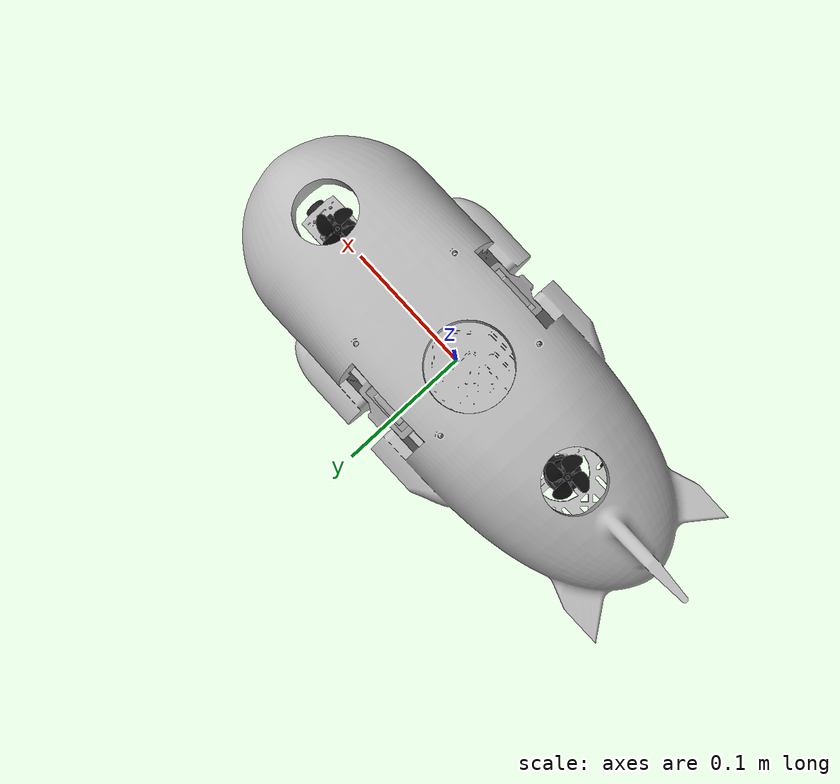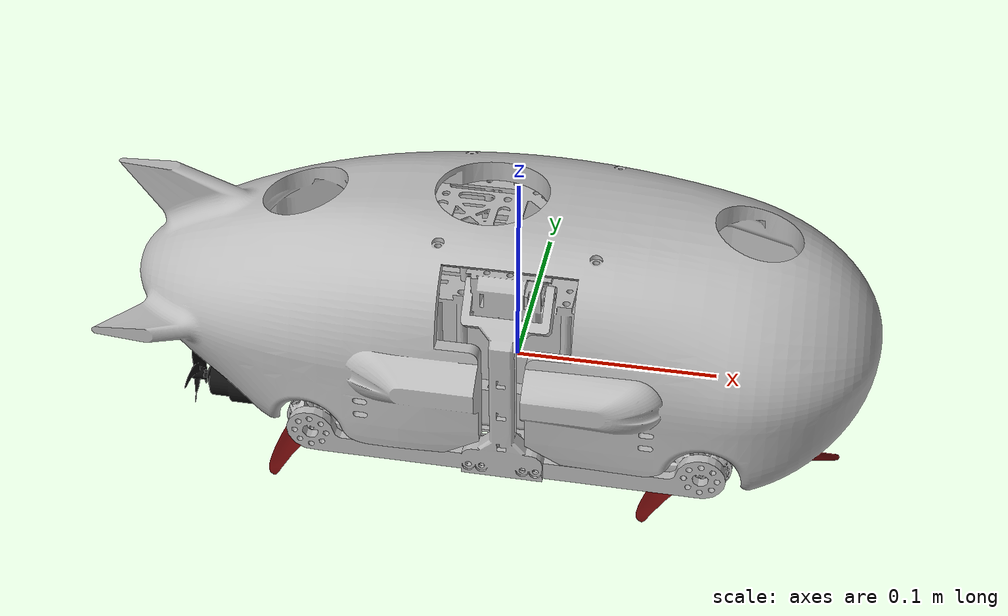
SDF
<?xml version="1.0" ?>
<sdf version="1.10">
  <model name="teleh4z_zaxis" canonical_link="base_link">
    <static>false</static>
    <self_collide>false</self_collide>
    <allow_auto_disable>false</allow_auto_disable>

    <link name="z_axis_carriage_link">
      <gravity>false</gravity>
      <pose>0 0 0 0 0 0</pose>
      <inertial>
        <mass>0.0001</mass>
        <inertia>
          <ixx>1e-8</ixx>
          <ixy>0</ixy>
          <ixz>0</ixz>
          <iyy>1e-8</iyy>
          <iyz>0</iyz>
          <izz>1e-8</izz>
        </inertia>
      </inertial>
    </link>

    <joint name="z_axis_slider_joint" type="prismatic">
      <parent>world</parent>
      <child>z_axis_carriage_link</child>
      <axis>
        <xyz>0 0 1</xyz>
        <limit>
          <lower>-5.0</lower>
          <upper>3.0</upper>
          <effort>1000000</effort>
          <velocity>1000</velocity>
        </limit>
        <dynamics>
          <damping>0.0</damping>
          <friction>0.0</friction>
        </dynamics>
      </axis>
    </joint>

    <joint name="z_axis_attitude_joint" type="ball">
      <parent>z_axis_carriage_link</parent>
      <child>base_link</child>
    </joint>

    <link name="base_link">
      <gravity>1</gravity>
      <velocity_decay>
        <linear>0.01</linear>
        <angular>0.01</angular>
      </velocity_decay>
      <pose>0 0 0 0 0 0</pose>

      <inertial>
        <!-- Mass-matched to the deployed Stonefish Teleh4z model. -->
        <mass>1.41407247401</mass>
        <pose>0 0 -0.0108 0 0 0</pose>
        <inertia>
          <ixx>0.003964</ixx>
          <ixy>-0.000003</ixy>
          <ixz>0.000266</ixz>
          <iyy>0.011147</iyy>
          <iyz>-0.000005</iyz>
          <izz>0.011083</izz>
        </inertia>
      </inertial>

      <visual name="body_main_visual">
        <pose>0 0 0 0 0 0</pose>
        <geometry>
          <mesh>
            <uri>model://teleh4z/meshes/body_main_colored.dae</uri>
          </mesh>
        </geometry>
      </visual>

      <collision name="base_buoyancy_collision">
        <pose>0 0 -0.0497833333 0 0 0</pose>
        <geometry>
          <box>
            <size>0.375 0.080 0.0304333333</size>
          </box>
        </geometry>
        <surface>
          <contact>
            <ode>
              <min_depth>0.001</min_depth>
              <max_vel>0.15</max_vel>
              <kp>100000.0</kp>
              <kd>100.0</kd>
            </ode>
          </contact>
          <friction>
            <ode>
              <mu>0.5</mu>
              <mu2>0.5</mu2>
            </ode>
          </friction>
        </surface>
      </collision>

      <sensor name="imu_sensor" type="imu">
        <always_on>1</always_on>
        <update_rate>250</update_rate>
        <visualize>true</visualize>
        <imu>
          <angular_velocity>
            <x><noise type="gaussian"><mean>0</mean><stddev>2e-4</stddev></noise></x>
            <y><noise type="gaussian"><mean>0</mean><stddev>2e-4</stddev></noise></y>
            <z><noise type="gaussian"><mean>0</mean><stddev>2e-4</stddev></noise></z>
          </angular_velocity>
          <linear_acceleration>
            <x><noise type="gaussian"><mean>0</mean><stddev>1.7e-2</stddev></noise></x>
            <y><noise type="gaussian"><mean>0</mean><stddev>1.7e-2</stddev></noise></y>
            <z><noise type="gaussian"><mean>0</mean><stddev>1.7e-2</stddev></noise></z>
          </linear_acceleration>
        </imu>
      </sensor>

      <sensor name="magnetometer_sensor" type="magnetometer">
        <always_on>1</always_on>
        <update_rate>100</update_rate>
        <magnetometer>
          <x><noise type="gaussian"><stddev>0.0001</stddev></noise></x>
          <y><noise type="gaussian"><stddev>0.0001</stddev></noise></y>
          <z><noise type="gaussian"><stddev>0.0001</stddev></noise></z>
        </magnetometer>
      </sensor>

      <sensor name="air_pressure_sensor" type="air_pressure">
        <always_on>1</always_on>
        <update_rate>50</update_rate>
        <air_pressure>
          <pressure>
            <noise type="gaussian"><mean>0</mean><stddev>0.01</stddev></noise>
          </pressure>
        </air_pressure>
      </sensor>

      <sensor name="navsat_sensor" type="navsat">
        <always_on>1</always_on>
        <update_rate>30</update_rate>
      </sensor>
    </link>

    <link name="buoyancy_shell_link">
      <pose relative_to="base_link">0 0 0 0 0 0</pose>
      <inertial>
        <!-- Collision-only buoyancy shell; its physical mass is carried by base_link. -->
        <mass>0.0001</mass>
        <pose>0 -0.000018 -0.0103683 0 0 0</pose>
        <inertia>
          <ixx>0.000789</ixx>
          <iyy>0.003277</iyy>
          <izz>0.003674</izz>
          <ixy>0</ixy>
          <ixz>0.000051</ixz>
          <iyz>0</iyz>
        </inertia>
      </inertial>

      <visual name="buoyancy_shell_visual">
        <pose>0 0 0 0 0 0</pose>
        <geometry>
          <mesh>
            <uri>model://teleh4z/meshes/buoyancy_shell_colored.dae</uri>
          </mesh>
        </geometry>
      </visual>

      <collision name="shell_buoyancy_collision">
        <pose>0 0 0.0547127329 0 0 0</pose>
        <geometry>
          <box>
            <size>0.240 0.161 0.0205745342</size>
          </box>
        </geometry>
      </collision>
    </link>

    <joint name="buoyancy_shell_joint" type="fixed">
      <parent>base_link</parent>
      <child>buoyancy_shell_link</child>
    </joint>

    <link name="camera_link">
      <pose relative_to="base_link">0.144 0 -0.0148 0 0 0</pose>
      <inertial>
        <mass>1e-4</mass>
        <inertia>
          <ixx>1e-8</ixx>
          <iyy>1e-8</iyy>
          <izz>1e-8</izz>
          <ixy>0</ixy>
          <ixz>0</ixz>
          <iyz>0</iyz>
        </inertia>
      </inertial>

      <visual name="camera_visual">
        <pose>0 0 0 0 0 0</pose>
        <geometry>
          <mesh>
            <uri>model://teleh4z/meshes/camera.stl</uri>
          </mesh>
        </geometry>
        <material>
          <ambient>0.05 0.05 0.05 1</ambient>
          <diffuse>0.14 0.14 0.14 1</diffuse>
          <specular>0.92 0.92 0.92 1</specular>
          <emissive>0.01 0.01 0.01 1</emissive>
        </material>
      </visual>

      <sensor name="front_camera" type="camera">
        <pose>0 0 0 0 0 0</pose>
        <camera>
          <horizontal_fov>1.74</horizontal_fov>
          <image>
            <format>R8G8B8</format>
            <width>1280</width>
            <height>960</height>
          </image>
          <clip>
            <near>0.1</near>
            <far>3000</far>
          </clip>
        </camera>
        <always_on>1</always_on>
        <update_rate>30</update_rate>
        <visualize>true</visualize>
        <topic>camera</topic>
      </sensor>
    </link>

    <joint name="camera_joint" type="fixed">
      <parent>base_link</parent>
      <child>camera_link</child>
    </joint>

    <link name="waterprop_mount_left_link">
      <pose relative_to="base_link">-0.155 0.036 -0.007866 0 0 0</pose>
      <inertial>
        <mass>1e-4</mass>
        <inertia>
          <ixx>1e-8</ixx>
          <iyy>1e-8</iyy>
          <izz>1e-8</izz>
          <ixy>0</ixy>
          <ixz>0</ixz>
          <iyz>0</iyz>
        </inertia>
      </inertial>
      <visual name="waterprop_mount_left_visual">
        <geometry>
          <mesh>
            <uri>model://teleh4z/meshes/waterprop_mont.stl</uri>
          </mesh>
        </geometry>
        <material>
          <ambient>0.03 0.03 0.03 1</ambient>
          <diffuse>0.07 0.07 0.07 1</diffuse>
          <specular>0.45 0.45 0.45 1</specular>
        </material>
      </visual>
    </link>

    <joint name="waterprop_mount_left_joint" type="fixed">
      <parent>base_link</parent>
      <child>waterprop_mount_left_link</child>
    </joint>

    <link name="waterprop_mount_right_link">
      <pose relative_to="base_link">-0.155 -0.036 -0.007866 0 0 0</pose>
      <inertial>
        <mass>1e-4</mass>
        <inertia>
          <ixx>1e-8</ixx>
          <iyy>1e-8</iyy>
          <izz>1e-8</izz>
          <ixy>0</ixy>
          <ixz>0</ixz>
          <iyz>0</iyz>
        </inertia>
      </inertial>
      <visual name="waterprop_mount_right_visual">
        <geometry>
          <mesh>
            <uri>model://teleh4z/meshes/waterprop_mont.stl</uri>
          </mesh>
        </geometry>
        <material>
          <ambient>0.03 0.03 0.03 1</ambient>
          <diffuse>0.07 0.07 0.07 1</diffuse>
          <specular>0.45 0.45 0.45 1</specular>
        </material>
      </visual>
    </link>

    <joint name="waterprop_mount_right_joint" type="fixed">
      <parent>base_link</parent>
      <child>waterprop_mount_right_link</child>
    </joint>

    <link name="waterprop_mount_front_link">
      <pose relative_to="base_link">0.1139 0 0.04 0 1.57079632679 0</pose>
      <inertial>
        <mass>1e-4</mass>
        <inertia>
          <ixx>1e-8</ixx>
          <iyy>1e-8</iyy>
          <izz>1e-8</izz>
          <ixy>0</ixy>
          <ixz>0</ixz>
          <iyz>0</iyz>
        </inertia>
      </inertial>
      <visual name="waterprop_mount_front_visual">
        <geometry>
          <mesh>
            <uri>model://teleh4z/meshes/waterprop_mont.stl</uri>
          </mesh>
        </geometry>
        <material>
          <ambient>0.03 0.03 0.03 1</ambient>
          <diffuse>0.07 0.07 0.07 1</diffuse>
          <specular>0.45 0.45 0.45 1</specular>
        </material>
      </visual>
    </link>

    <joint name="waterprop_mount_front_joint" type="fixed">
      <parent>base_link</parent>
      <child>waterprop_mount_front_link</child>
    </joint>

    <link name="waterprop_mount_back_link">
      <pose relative_to="base_link">-0.10643 0 0.04 0 1.57079632679 0</pose>
      <inertial>
        <mass>1e-4</mass>
        <inertia>
          <ixx>1e-8</ixx>
          <iyy>1e-8</iyy>
          <izz>1e-8</izz>
          <ixy>0</ixy>
          <ixz>0</ixz>
          <iyz>0</iyz>
        </inertia>
      </inertial>
      <visual name="waterprop_mount_back_visual">
        <geometry>
          <mesh>
            <uri>model://teleh4z/meshes/waterprop_mont.stl</uri>
          </mesh>
        </geometry>
        <material>
          <ambient>0.03 0.03 0.03 1</ambient>
          <diffuse>0.07 0.07 0.07 1</diffuse>
          <specular>0.45 0.45 0.45 1</specular>
        </material>
      </visual>
    </link>

    <joint name="waterprop_mount_back_joint" type="fixed">
      <parent>base_link</parent>
      <child>waterprop_mount_back_link</child>
    </joint>

    <link name="arm_right_link">
      <pose relative_to="base_link">0.0219 -0.0445 0.0705 0 0 0</pose>
      <inertial>
        <mass>0.03686</mass>
        <inertia>
          <ixx>1e-8</ixx>
          <iyy>1e-8</iyy>
          <izz>1e-8</izz>
          <ixy>0</ixy>
          <ixz>0</ixz>
          <iyz>0</iyz>
        </inertia>
      </inertial>

      <visual name="arm_right_visual">
        <geometry>
          <mesh>
            <uri>model://teleh4z/meshes/arm_right_colored.dae</uri>
          </mesh>
        </geometry>
      </visual>

    </link>

    <joint name="arm_right_joint" type="revolute">
      <parent>base_link</parent>
      <child>arm_right_link</child>
      <axis>
        <xyz>-1 0 0</xyz>
        <limit>
          <lower>0.0</lower>
          <upper>1.57079632679</upper>
          <effort>50</effort>
          <velocity>5</velocity>
        </limit>
        <dynamics>
          <damping>0.05</damping>
          <friction>0.0</friction>
        </dynamics>
      </axis>
    </joint>

    <link name="arm_left_link">
      <pose relative_to="base_link">0.0219 0.0445 0.0705 0 0 0</pose>
      <inertial>
        <mass>0.03686</mass>
        <inertia>
          <ixx>1e-8</ixx>
          <iyy>1e-8</iyy>
          <izz>1e-8</izz>
          <ixy>0</ixy>
          <ixz>0</ixz>
          <iyz>0</iyz>
        </inertia>
      </inertial>

      <visual name="arm_left_visual">
        <geometry>
          <mesh>
            <uri>model://teleh4z/meshes/arm_left_colored.dae</uri>
          </mesh>
        </geometry>
      </visual>

    </link>

    <joint name="arm_left_joint" type="revolute">
      <parent>base_link</parent>
      <child>arm_left_link</child>
      <axis>
        <xyz>1 0 0</xyz>
        <limit>
          <lower>0.0</lower>
          <upper>1.57079632679</upper>
          <effort>50</effort>
          <velocity>5</velocity>
        </limit>
        <dynamics>
          <damping>0.05</damping>
          <friction>0.0</friction>
        </dynamics>
      </axis>
    </joint>

    <link name="airprop_rightfront_link">
      <pose relative_to="arm_right_link">0.0781 0.0045 -0.0838 1.57079632679 0 0</pose>
      <inertial>
        <mass>1e-4</mass>
        <inertia>
          <ixx>1e-8</ixx>
          <iyy>1e-8</iyy>
          <izz>1e-8</izz>
          <ixy>0</ixy>
          <ixz>0</ixz>
          <iyz>0</iyz>
        </inertia>
      </inertial>
      <visual name="airprop_rightfront_visual">
        <pose>0 0 0 -1.57079632679 0 0</pose>
        <geometry>
          <mesh>
            <uri>model://teleh4z/meshes/airprop_rightfront.stl</uri>
          </mesh>
        </geometry>
        <material>
          <ambient>0.18 0.01 0.01 1</ambient>
          <diffuse>0.42 0.03 0.03 1</diffuse>
          <specular>0.95 0.95 0.95 1</specular>
          <emissive>0.02 0.00 0.00 1</emissive>
        </material>
      </visual>
    </link>

    <joint name="airprop_rightfront_joint" type="revolute">
      <parent>arm_right_link</parent>
      <child>airprop_rightfront_link</child>
      <axis>
        <xyz>0 0 1</xyz>
        <limit>
          <lower>-1000000</lower>
          <upper>1000000</upper>
          <effort>10</effort>
          <velocity>1000</velocity>
        </limit>
        <dynamics>
          <damping>0.001</damping>
          <friction>0.0</friction>
        </dynamics>
      </axis>
    </joint>

    <link name="airprop_rightback_link">
      <pose relative_to="arm_right_link">-0.1139 0.0045 -0.0838 1.57079632679 0 0</pose>
      <inertial>
        <mass>1e-4</mass>
        <inertia>
          <ixx>1e-8</ixx>
          <iyy>1e-8</iyy>
          <izz>1e-8</izz>
          <ixy>0</ixy>
          <ixz>0</ixz>
          <iyz>0</iyz>
        </inertia>
      </inertial>
      <visual name="airprop_rightback_visual">
        <pose>0 0 0 -1.57079632679 0 0</pose>
        <geometry>
          <mesh>
            <uri>model://teleh4z/meshes/airprop_rightback.stl</uri>
          </mesh>
        </geometry>
        <material>
          <ambient>0.18 0.01 0.01 1</ambient>
          <diffuse>0.42 0.03 0.03 1</diffuse>
          <specular>0.95 0.95 0.95 1</specular>
          <emissive>0.02 0.00 0.00 1</emissive>
        </material>
      </visual>
    </link>

    <joint name="airprop_rightback_joint" type="revolute">
      <parent>arm_right_link</parent>
      <child>airprop_rightback_link</child>
      <axis>
        <xyz>0 0 1</xyz>
        <limit>
          <lower>-1000000</lower>
          <upper>1000000</upper>
          <effort>10</effort>
          <velocity>1000</velocity>
        </limit>
        <dynamics>
          <damping>0.001</damping>
          <friction>0.0</friction>
        </dynamics>
      </axis>
    </joint>

    <link name="airprop_leftfront_link">
      <pose relative_to="arm_left_link">0.0781 -0.0045 -0.0838 -1.57079632679 0 0</pose>
      <inertial>
        <mass>1e-4</mass>
        <inertia>
          <ixx>1e-8</ixx>
          <iyy>1e-8</iyy>
          <izz>1e-8</izz>
          <ixy>0</ixy>
          <ixz>0</ixz>
          <iyz>0</iyz>
        </inertia>
      </inertial>
      <visual name="airprop_leftfront_visual">
        <pose>0 0 0 1.57079632679 0 0</pose>
        <geometry>
          <mesh>
            <uri>model://teleh4z/meshes/airprop_leftfront.stl</uri>
          </mesh>
        </geometry>
        <material>
          <ambient>0.01 0.04 0.18 1</ambient>
          <diffuse>0.03 0.12 0.42 1</diffuse>
          <specular>0.95 0.95 0.95 1</specular>
          <emissive>0.00 0.00 0.02 1</emissive>
        </material>
      </visual>
    </link>

    <joint name="airprop_leftfront_joint" type="revolute">
      <parent>arm_left_link</parent>
      <child>airprop_leftfront_link</child>
      <axis>
        <xyz>0 0 1</xyz>
        <limit>
          <lower>-1000000</lower>
          <upper>1000000</upper>
          <effort>10</effort>
          <velocity>1000</velocity>
        </limit>
        <dynamics>
          <damping>0.001</damping>
          <friction>0.0</friction>
        </dynamics>
      </axis>
    </joint>

    <link name="airprop_leftback_link">
      <pose relative_to="arm_left_link">-0.1139 -0.0045 -0.0838 -1.57079632679 0 0</pose>
      <inertial>
        <mass>1e-4</mass>
        <inertia>
          <ixx>1e-8</ixx>
          <iyy>1e-8</iyy>
          <izz>1e-8</izz>
          <ixy>0</ixy>
          <ixz>0</ixz>
          <iyz>0</iyz>
        </inertia>
      </inertial>
      <visual name="airprop_leftback_visual">
        <pose>0 0 0 1.57079632679 0 0</pose>
        <geometry>
          <mesh>
            <uri>model://teleh4z/meshes/airprop_leftback.stl</uri>
          </mesh>
        </geometry>
        <material>
          <ambient>0.01 0.04 0.18 1</ambient>
          <diffuse>0.03 0.12 0.42 1</diffuse>
          <specular>0.95 0.95 0.95 1</specular>
          <emissive>0.00 0.00 0.02 1</emissive>
        </material>
      </visual>
    </link>

    <joint name="airprop_leftback_joint" type="revolute">
      <parent>arm_left_link</parent>
      <child>airprop_leftback_link</child>
      <axis>
        <xyz>0 0 1</xyz>
        <limit>
          <lower>-1000000</lower>
          <upper>1000000</upper>
          <effort>10</effort>
          <velocity>1000</velocity>
        </limit>
        <dynamics>
          <damping>0.001</damping>
          <friction>0.0</friction>
        </dynamics>
      </axis>
    </joint>

    <link name="waterprop_left_link">
      <pose relative_to="base_link">-0.155 0.036 -0.007866 0 0 0</pose>
      <inertial>
        <mass>1e-4</mass>
        <inertia>
          <ixx>1e-8</ixx>
          <iyy>1e-8</iyy>
          <izz>1e-8</izz>
          <ixy>0</ixy>
          <ixz>0</ixz>
          <iyz>0</iyz>
        </inertia>
      </inertial>
      <visual name="waterprop_left_visual">
        <geometry>
          <mesh>
            <uri>model://teleh4z/meshes/waterprop.stl</uri>
          </mesh>
        </geometry>
        <material>
          <ambient>0.015 0.015 0.015 1</ambient>
          <diffuse>0.035 0.035 0.035 1</diffuse>
          <specular>0.98 0.98 0.98 1</specular>
          <emissive>0.005 0.005 0.005 1</emissive>
        </material>
      </visual>
    </link>

    <joint name="waterprop_left_joint" type="revolute">
      <parent>base_link</parent>
      <child>waterprop_left_link</child>
      <axis>
        <xyz>1 0 0</xyz>
        <limit>
          <lower>-1000000</lower>
          <upper>1000000</upper>
          <effort>10</effort>
          <velocity>1000</velocity>
        </limit>
        <dynamics>
          <damping>0.001</damping>
          <friction>0.0</friction>
        </dynamics>
      </axis>
    </joint>

    <link name="waterprop_right_link">
      <pose relative_to="base_link">-0.155 -0.036 -0.007866 0 0 0</pose>
      <inertial>
        <mass>1e-4</mass>
        <inertia>
          <ixx>1e-8</ixx>
          <iyy>1e-8</iyy>
          <izz>1e-8</izz>
          <ixy>0</ixy>
          <ixz>0</ixz>
          <iyz>0</iyz>
        </inertia>
      </inertial>
      <visual name="waterprop_right_visual">
        <geometry>
          <mesh>
            <uri>model://teleh4z/meshes/waterprop.stl</uri>
          </mesh>
        </geometry>
        <material>
          <ambient>0.015 0.015 0.015 1</ambient>
          <diffuse>0.035 0.035 0.035 1</diffuse>
          <specular>0.98 0.98 0.98 1</specular>
          <emissive>0.005 0.005 0.005 1</emissive>
        </material>
      </visual>
    </link>

    <joint name="waterprop_right_joint" type="revolute">
      <parent>base_link</parent>
      <child>waterprop_right_link</child>
      <axis>
        <xyz>1 0 0</xyz>
        <limit>
          <lower>-1000000</lower>
          <upper>1000000</upper>
          <effort>10</effort>
          <velocity>1000</velocity>
        </limit>
        <dynamics>
          <damping>0.001</damping>
          <friction>0.0</friction>
        </dynamics>
      </axis>
    </joint>

    <link name="waterprop_front_link">
      <pose relative_to="base_link">0.1139 0 0.04 0 1.57079632679 0</pose>
      <inertial>
        <mass>1e-4</mass>
        <inertia>
          <ixx>1e-8</ixx>
          <iyy>1e-8</iyy>
          <izz>1e-8</izz>
          <ixy>0</ixy>
          <ixz>0</ixz>
          <iyz>0</iyz>
        </inertia>
      </inertial>
      <visual name="waterprop_front_visual">
        <geometry>
          <mesh>
            <uri>model://teleh4z/meshes/waterprop.stl</uri>
          </mesh>
        </geometry>
        <material>
          <ambient>0.015 0.015 0.015 1</ambient>
          <diffuse>0.035 0.035 0.035 1</diffuse>
          <specular>0.98 0.98 0.98 1</specular>
          <emissive>0.005 0.005 0.005 1</emissive>
        </material>
      </visual>
    </link>

    <joint name="waterprop_front_joint" type="revolute">
      <parent>base_link</parent>
      <child>waterprop_front_link</child>
      <axis>
        <xyz>1 0 0</xyz>
        <limit>
          <lower>-1000000</lower>
          <upper>1000000</upper>
          <effort>10</effort>
          <velocity>1000</velocity>
        </limit>
        <dynamics>
          <damping>0.001</damping>
          <friction>0.0</friction>
        </dynamics>
      </axis>
    </joint>

    <link name="waterprop_back_link">
      <pose relative_to="base_link">-0.10643 0 0.04 0 1.57079632679 0</pose>
      <inertial>
        <mass>1e-4</mass>
        <inertia>
          <ixx>1e-8</ixx>
          <iyy>1e-8</iyy>
          <izz>1e-8</izz>
          <ixy>0</ixy>
          <ixz>0</ixz>
          <iyz>0</iyz>
        </inertia>
      </inertial>
      <visual name="waterprop_back_visual">
        <geometry>
          <mesh>
            <uri>model://teleh4z/meshes/waterprop.stl</uri>
          </mesh>
        </geometry>
        <material>
          <ambient>0.015 0.015 0.015 1</ambient>
          <diffuse>0.035 0.035 0.035 1</diffuse>
          <specular>0.98 0.98 0.98 1</specular>
          <emissive>0.005 0.005 0.005 1</emissive>
        </material>
      </visual>
    </link>

    <joint name="waterprop_back_joint" type="revolute">
      <parent>base_link</parent>
      <child>waterprop_back_link</child>
      <axis>
        <xyz>1 0 0</xyz>
        <limit>
          <lower>-1000000</lower>
          <upper>1000000</upper>
          <effort>10</effort>
          <velocity>1000</velocity>
        </limit>
        <dynamics>
          <damping>0.001</damping>
          <friction>0.0</friction>
        </dynamics>
      </axis>
    </joint>

    <plugin
      filename="gz-sim-joint-trajectory-controller-system"
      name="gz::sim::systems::JointTrajectoryController">
      <topic>arm_trajectory</topic>
      <joint_name>arm_left_joint</joint_name>
      <initial_position>1.57079632679</initial_position>
      <position_p_gain>5.0</position_p_gain>
      <position_i_gain>0.1</position_i_gain>
      <position_d_gain>0.01</position_d_gain>
      <position_i_min>-1</position_i_min>
      <position_i_max>1</position_i_max>
      <position_cmd_min>-10</position_cmd_min>
      <position_cmd_max>10</position_cmd_max>

      <joint_name>arm_right_joint</joint_name>
      <initial_position>1.57079632679</initial_position>
      <position_p_gain>5.0</position_p_gain>
      <position_i_gain>0.1</position_i_gain>
      <position_d_gain>0.01</position_d_gain>
      <position_i_min>-1</position_i_min>
      <position_i_max>1</position_i_max>
      <position_cmd_min>-10</position_cmd_min>
      <position_cmd_max>10</position_cmd_max>
    </plugin>

    <plugin
      filename="gz-sim-joint-state-publisher-system"
      name="gz::sim::systems::JointStatePublisher">
      <joint_name>arm_left_joint</joint_name>
      <joint_name>arm_right_joint</joint_name>
    </plugin>

    <plugin filename="/home/user/external/plugins/hybrid_air_propeller_model/build/libgz-sim-hybrid-air-propeller-model-system.so" name="teleaqua_gz_plugins::HybridAirPropellerModel">
      <jointName>airprop_rightfront_joint</jointName>
      <linkName>airprop_rightfront_link</linkName>
      <axisFrameLinkName>base_link</axisFrameLinkName>
      <turningDirection>ccw</turningDirection>
      <commandSubTopic>command/motor_speed</commandSubTopic>
      <diagnosticTopic>hybrid_air_propeller_0/state</diagnosticTopic>
      <motorNumber>0</motorNumber>
      <normalizedCommand>false</normalizedCommand>
      <bidirectional>true</bidirectional>
      <thrustAxis>0 0 1</thrustAxis>
      <timeConstantUp>0.015</timeConstantUp>
      <timeConstantDown>0.03</timeConstantDown>
      <maxRotVelocity>1585</maxRotVelocity>
      <motorConstantAir>1.64e-05</motorConstantAir>
      <momentConstantAir>0.018</momentConstantAir>
      <motorConstantWater>2.2e-05</motorConstantWater>
      <momentConstantWater>0.018</momentConstantWater>
      <maxThrust>80</maxThrust>
      <maxTorque>8</maxTorque>
      <surface_z>0.0</surface_z>
      <transition_band>0.08</transition_band>
      <submergenceFilterAlpha>0.95</submergenceFilterAlpha>
      <sample_point>0 0 0</sample_point>
      <sample_point>0.018 0 0</sample_point>
      <sample_point>-0.018 0 0</sample_point>
      <sample_point>0 0.018 0</sample_point>
      <sample_point>0 -0.018 0</sample_point>
    </plugin>

    <plugin filename="/home/user/external/plugins/hybrid_air_propeller_model/build/libgz-sim-hybrid-air-propeller-model-system.so" name="teleaqua_gz_plugins::HybridAirPropellerModel">
      <jointName>airprop_leftfront_joint</jointName>
      <linkName>airprop_leftfront_link</linkName>
      <axisFrameLinkName>base_link</axisFrameLinkName>
      <turningDirection>cw</turningDirection>
      <commandSubTopic>command/motor_speed</commandSubTopic>
      <diagnosticTopic>hybrid_air_propeller_1/state</diagnosticTopic>
      <motorNumber>1</motorNumber>
      <normalizedCommand>false</normalizedCommand>
      <bidirectional>true</bidirectional>
      <thrustAxis>0 0 1</thrustAxis>
      <timeConstantUp>0.015</timeConstantUp>
      <timeConstantDown>0.03</timeConstantDown>
      <maxRotVelocity>1585</maxRotVelocity>
      <motorConstantAir>1.64e-05</motorConstantAir>
      <momentConstantAir>0.018</momentConstantAir>
      <motorConstantWater>2.2e-05</motorConstantWater>
      <momentConstantWater>0.018</momentConstantWater>
      <maxThrust>80</maxThrust>
      <maxTorque>8</maxTorque>
      <surface_z>0.0</surface_z>
      <transition_band>0.08</transition_band>
      <submergenceFilterAlpha>0.95</submergenceFilterAlpha>
      <sample_point>0 0 0</sample_point>
      <sample_point>0.018 0 0</sample_point>
      <sample_point>-0.018 0 0</sample_point>
      <sample_point>0 0.018 0</sample_point>
      <sample_point>0 -0.018 0</sample_point>
    </plugin>

    <plugin filename="/home/user/external/plugins/hybrid_air_propeller_model/build/libgz-sim-hybrid-air-propeller-model-system.so" name="teleaqua_gz_plugins::HybridAirPropellerModel">
      <jointName>airprop_leftback_joint</jointName>
      <linkName>airprop_leftback_link</linkName>
      <axisFrameLinkName>base_link</axisFrameLinkName>
      <turningDirection>ccw</turningDirection>
      <commandSubTopic>command/motor_speed</commandSubTopic>
      <diagnosticTopic>hybrid_air_propeller_2/state</diagnosticTopic>
      <motorNumber>2</motorNumber>
      <normalizedCommand>false</normalizedCommand>
      <bidirectional>true</bidirectional>
      <thrustAxis>0 0 1</thrustAxis>
      <timeConstantUp>0.015</timeConstantUp>
      <timeConstantDown>0.03</timeConstantDown>
      <maxRotVelocity>1585</maxRotVelocity>
      <motorConstantAir>1.64e-05</motorConstantAir>
      <momentConstantAir>0.018</momentConstantAir>
      <motorConstantWater>2.2e-05</motorConstantWater>
      <momentConstantWater>0.018</momentConstantWater>
      <maxThrust>80</maxThrust>
      <maxTorque>8</maxTorque>
      <surface_z>0.0</surface_z>
      <transition_band>0.08</transition_band>
      <submergenceFilterAlpha>0.95</submergenceFilterAlpha>
      <sample_point>0 0 0</sample_point>
      <sample_point>0.018 0 0</sample_point>
      <sample_point>-0.018 0 0</sample_point>
      <sample_point>0 0.018 0</sample_point>
      <sample_point>0 -0.018 0</sample_point>
    </plugin>

    <plugin filename="/home/user/external/plugins/hybrid_air_propeller_model/build/libgz-sim-hybrid-air-propeller-model-system.so" name="teleaqua_gz_plugins::HybridAirPropellerModel">
      <jointName>airprop_rightback_joint</jointName>
      <linkName>airprop_rightback_link</linkName>
      <axisFrameLinkName>base_link</axisFrameLinkName>
      <turningDirection>cw</turningDirection>
      <commandSubTopic>command/motor_speed</commandSubTopic>
      <diagnosticTopic>hybrid_air_propeller_3/state</diagnosticTopic>
      <motorNumber>3</motorNumber>
      <normalizedCommand>false</normalizedCommand>
      <bidirectional>true</bidirectional>
      <thrustAxis>0 0 1</thrustAxis>
      <timeConstantUp>0.015</timeConstantUp>
      <timeConstantDown>0.03</timeConstantDown>
      <maxRotVelocity>1585</maxRotVelocity>
      <motorConstantAir>1.64e-05</motorConstantAir>
      <momentConstantAir>0.018</momentConstantAir>
      <motorConstantWater>2.2e-05</motorConstantWater>
      <momentConstantWater>0.018</momentConstantWater>
      <maxThrust>80</maxThrust>
      <maxTorque>8</maxTorque>
      <surface_z>0.0</surface_z>
      <transition_band>0.08</transition_band>
      <submergenceFilterAlpha>0.95</submergenceFilterAlpha>
      <sample_point>0 0 0</sample_point>
      <sample_point>0.018 0 0</sample_point>
      <sample_point>-0.018 0 0</sample_point>
      <sample_point>0 0.018 0</sample_point>
      <sample_point>0 -0.018 0</sample_point>
    </plugin>

    <plugin filename="/home/user/external/plugins/bidir_motor_model/build/libgz-sim-bidir-motor-model-system.so" name="gz::sim::v8::systems::BiDirectionalMotorModel">
      <jointName>waterprop_right_joint</jointName>
      <linkName>waterprop_right_link</linkName>
      <turningDirection>ccw</turningDirection>
      <timeConstantUp>1e-6</timeConstantUp>
      <timeConstantDown>1e-6</timeConstantDown>
      <motorConstant>9.6065e-07</motorConstant>
      <momentConstant>-3.318e-10</momentConstant>
      <commandSubTopic>/teleh4z_manual/servo_0</commandSubTopic>
      <motorNumber>0</motorNumber>
      <thrustAxis>1 0 0</thrustAxis>
      <commandGain>1.0</commandGain>
      <SIM_GZ_SV_TRIM>0.0</SIM_GZ_SV_TRIM>
      <deadbandOmega>10</deadbandOmega>
      <maxOmega>3500</maxOmega>
      <maxThrust>15</maxThrust>
      <maxTorque>1.5</maxTorque>
      <forwardCoeff>1.0</forwardCoeff>
      <reverseCoeff>0.86</reverseCoeff>
      <surface_z>0.0</surface_z>
      <transition_band>0.08</transition_band>
      <fluid_density_water>1000.0</fluid_density_water>
      <fluid_density_air>1.225</fluid_density_air>
      <sample_point>0 0 0</sample_point>
      <sample_point>0 0.018 0</sample_point>
      <sample_point>0 -0.018 0</sample_point>
      <sample_point>0 0 0.018</sample_point>
      <sample_point>0 0 -0.018</sample_point>
    </plugin>

    <plugin filename="/home/user/external/plugins/bidir_motor_model/build/libgz-sim-bidir-motor-model-system.so" name="gz::sim::v8::systems::BiDirectionalMotorModel">
      <jointName>waterprop_front_joint</jointName>
      <linkName>waterprop_front_link</linkName>
      <turningDirection>ccw</turningDirection>
      <timeConstantUp>1e-6</timeConstantUp>
      <timeConstantDown>1e-6</timeConstantDown>
      <motorConstant>9.6065e-07</motorConstant>
      <momentConstant>-3.318e-10</momentConstant>
      <commandSubTopic>/teleh4z_manual/servo_1</commandSubTopic>
      <motorNumber>0</motorNumber>
      <thrustAxis>1 0 0</thrustAxis>
      <commandGain>1.0</commandGain>
      <SIM_GZ_SV_TRIM>0.0</SIM_GZ_SV_TRIM>
      <deadbandOmega>10</deadbandOmega>
      <maxOmega>3500</maxOmega>
      <maxThrust>15</maxThrust>
      <maxTorque>1.5</maxTorque>
      <forwardCoeff>1.0</forwardCoeff>
      <reverseCoeff>0.86</reverseCoeff>
      <surface_z>0.0</surface_z>
      <transition_band>0.08</transition_band>
      <fluid_density_water>1000.0</fluid_density_water>
      <fluid_density_air>1.225</fluid_density_air>
      <sample_point>0 0 0</sample_point>
      <sample_point>0 0.018 0</sample_point>
      <sample_point>0 -0.018 0</sample_point>
      <sample_point>0 0 0.018</sample_point>
      <sample_point>0 0 -0.018</sample_point>
    </plugin>

    <plugin filename="/home/user/external/plugins/bidir_motor_model/build/libgz-sim-bidir-motor-model-system.so" name="gz::sim::v8::systems::BiDirectionalMotorModel">
      <jointName>waterprop_left_joint</jointName>
      <linkName>waterprop_left_link</linkName>
      <turningDirection>ccw</turningDirection>
      <timeConstantUp>1e-6</timeConstantUp>
      <timeConstantDown>1e-6</timeConstantDown>
      <motorConstant>9.6065e-07</motorConstant>
      <momentConstant>-3.318e-10</momentConstant>
      <commandSubTopic>/teleh4z_manual/servo_2</commandSubTopic>
      <motorNumber>0</motorNumber>
      <thrustAxis>1 0 0</thrustAxis>
      <commandGain>1.0</commandGain>
      <SIM_GZ_SV_TRIM>0.0</SIM_GZ_SV_TRIM>
      <deadbandOmega>10</deadbandOmega>
      <maxOmega>3500</maxOmega>
      <maxThrust>15</maxThrust>
      <maxTorque>1.5</maxTorque>
      <forwardCoeff>1.0</forwardCoeff>
      <reverseCoeff>0.86</reverseCoeff>

    </plugin>

    <plugin filename="/home/user/external/plugins/bidir_motor_model/build/libgz-sim-bidir-motor-model-system.so" name="gz::sim::v8::systems::BiDirectionalMotorModel">
      <jointName>waterprop_back_joint</jointName>
      <linkName>waterprop_back_link</linkName>
      <turningDirection>ccw</turningDirection>
      <timeConstantUp>1e-6</timeConstantUp>
      <timeConstantDown>1e-6</timeConstantDown>
      <motorConstant>9.6065e-07</motorConstant>
      <momentConstant>-3.318e-10</momentConstant>
      <commandSubTopic>/teleh4z_manual/servo_3</commandSubTopic>
      <motorNumber>0</motorNumber>
      <thrustAxis>1 0 0</thrustAxis>
      <commandGain>1.0</commandGain>
      <SIM_GZ_SV_TRIM>0.0</SIM_GZ_SV_TRIM>
      <deadbandOmega>10</deadbandOmega>
      <maxOmega>3500</maxOmega>
      <maxThrust>15</maxThrust>
      <maxTorque>1.5</maxTorque>
      <forwardCoeff>1.0</forwardCoeff>
      <reverseCoeff>0.86</reverseCoeff>
      <surface_z>0.0</surface_z>
      <transition_band>0.08</transition_band>
      <fluid_density_water>1000.0</fluid_density_water>
      <fluid_density_air>1.225</fluid_density_air>
    </plugin>

    <plugin filename="/home/user/external/plugins/hydrodynamics/build/libhydrodynamics.so" name="zyshine3_gz_plugins::HybridHydrodynamics">
      <hydrodynamics>
        <link_name>base_link</link_name>
        <surface_z>0.0</surface_z>
        <transition_band>0.1</transition_band>
        <fluid_density_water>1000.0</fluid_density_water>
        <fluid_density_air>1.225</fluid_density_air>
        <force_mediumScale>1.0</force_mediumScale>
        <enable_buoyancy>true</enable_buoyancy>
        <!-- Full-submersion buoyancy matched to Stonefish. -->
        <buoyancy_force_N>15.377871758</buoyancy_force_N>
        <default_current>0 0 0</default_current>
        <air_clearance_margin>-0.02</air_clearance_margin>
        <!-- 浸沒比例采样点可以进一步优化 -->
        <sample_point>0.16 0.0 0.06</sample_point>
        <sample_point>0.16 0.0 -0.02</sample_point>
        <sample_point>0.06 0.12 0.05</sample_point>
        <sample_point>0.06 -0.12 0.05</sample_point>
        <sample_point>0.00 0.0 0.08</sample_point>
        <sample_point>0.00 0.0 -0.04</sample_point>
        <sample_point>-0.10 0.12 0.04</sample_point>
        <sample_point>-0.10 -0.12 0.04</sample_point>
        <sample_point>-0.14 0.0 -0.01</sample_point>

        <water_thruster_link_name>waterprop_right_link</water_thruster_link_name>
        <water_thruster_link_name>waterprop_front_link</water_thruster_link_name>
        <water_thruster_link_name>waterprop_left_link</water_thruster_link_name>
        <water_thruster_link_name>waterprop_back_link</water_thruster_link_name>

        <air_prop_link_name>airprop_rightfront_link</air_prop_link_name>
        <air_prop_link_name>airprop_leftfront_link</air_prop_link_name>
        <air_prop_link_name>airprop_leftback_link</air_prop_link_name>
        <air_prop_link_name>airprop_rightback_link</air_prop_link_name>

        <!-- HybridHydrodynamics v2 ：插件侧附加质量与附加质量科氏项。
             这里沿用传统水动力学导数符号约定，内部会按正幅值使用。 -->
        <enable_added_mass>true</enable_added_mass>
        <enable_added_mass_coriolis>true</enable_added_mass_coriolis>
        <xDotU>-3.760149</xDotU>
        <yDotV>-0.02</yDotV>
        <zDotW>-0.01</zDotW>
        <kDotP>-0.08</kDotP>
        <mDotQ>-0.04</mDotQ>
        <nDotR>-0.02</nDotR>

        <!-- HybridHydrodynamics v2 新增：加速度估计滤波、限幅与 jerk 限制。
             这些是首版稳定性占位参数，后续可以结合日志继续调参。 -->
        <added_mass_velocity_filter_tau>0.03</added_mass_velocity_filter_tau>
        <added_mass_accel_filter_tau>0.06</added_mass_accel_filter_tau>
        <added_mass_linear_accel_limit>4.0</added_mass_linear_accel_limit>
        <added_mass_angular_accel_limit>8.0</added_mass_angular_accel_limit>
        <added_mass_linear_jerk_limit>20.0</added_mass_linear_jerk_limit>
        <added_mass_angular_jerk_limit>40.0</added_mass_angular_jerk_limit>
        <added_mass_reset_scale_threshold>0.05</added_mass_reset_scale_threshold>

        <!-- HybridHydrodynamics v2 阻尼参数：仍保留线性项与 abs 二次项。 -->
        <xU>-0.0500326933636399</xU>
        <xUabsU>-7.50567953394116</xUabsU>
        <yV>-25.0</yV>
        <yVabsV>-65.0</yVabsV>
        <zW>-25.0</zW>
        <zWabsW>-42.0</zWabsW>
        <kP>-5.2</kP>
        <kPabsP>-1.5</kPabsP>
        <mQ>-5.0</mQ>
        <mQabsQ>-9.0</mQabsQ>
        <nR>-4.5</nR>
        <nRabsR>-10.5</nRabsR>
      </hydrodynamics>
    </plugin>

    <plugin filename="gz-sim-pose-publisher-system" name="gz::sim::systems::PosePublisher">
      <publish_link_pose>false</publish_link_pose>
      <publish_nested_model_pose>true</publish_nested_model_pose>
      <publish_model_pose>true</publish_model_pose>
    </plugin>

    <plugin filename="gz-sim-odometry-publisher-system" name="gz::sim::systems::OdometryPublisher">
      <dimensions>3</dimensions>
    </plugin>

  </model>
</sdf>
